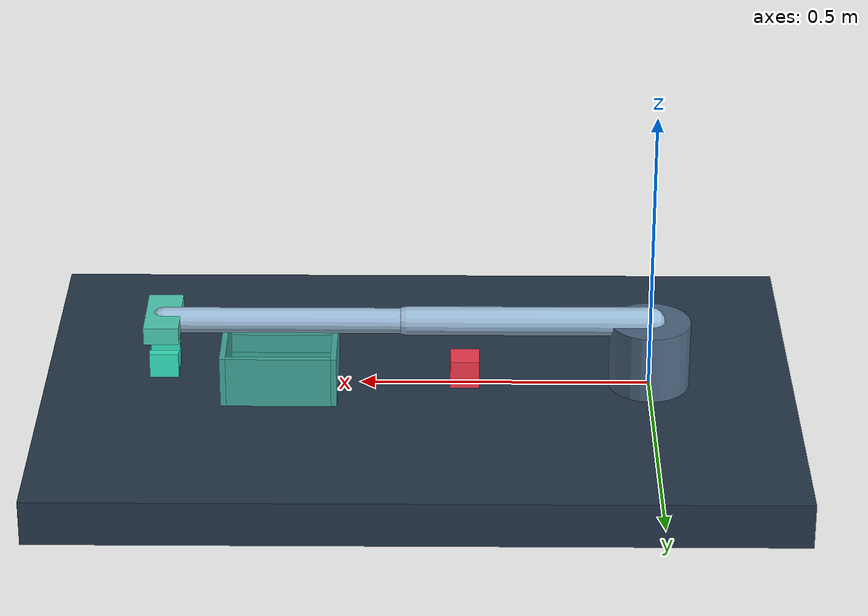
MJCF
<mujoco model="tabletop_contact_arm">
  <compiler angle="radian"/>
  <option timestep="0.002" gravity="0 0 -9.81" integrator="implicitfast" cone="elliptic" iterations="80"/>
  <visual><global offwidth="960" offheight="640"/><quality shadowsize="2048"/></visual>
  <default>
    <joint damping="3" armature="0.02"/>
    <geom friction="1.8 0.01 0.001" solref="0.006 1" solimp="0.95 0.99 0.001" condim="4"/>
    <position kp="2500" kv="100"/>
  </default>
  <asset>
    <texture name="grid" type="2d" builtin="checker" rgb1="0.12 0.18 0.25" rgb2="0.16 0.23 0.31" width="256" height="256"/>
    <material name="table" texture="grid" texrepeat="8 6" reflectance="0.12"/>
  </asset>
  <worldbody>
    <light pos="0.3 -1 2" dir="0 0 -1" diffuse="0.9 0.9 0.9"/>
    <light pos="0.5 1 1.5" dir="0 0 -1" diffuse="0.5 0.6 0.7"/>
    <camera name="overview" pos="1.30 -1.45 1.05" xyaxes="0.85 0.53 0 -0.24 0.39 0.89"/>
    <camera name="perception" pos="0.4 0 1.2" xyaxes="1 0 0 0 1 0" fovy="45"/>
    <geom name="table" type="box" pos="0.4 0 -0.04" size="0.65 0.42 0.04" material="table"/>
    <geom name="pedestal" type="cylinder" pos="0 0 0.06" size="0.07 0.06" rgba="0.3 0.4 0.5 1"/>
    <geom name="tray_floor" type="box" pos="0.64 0 0.0075" size="0.09 0.08 0.0075" rgba="0.2 0.6 0.55 1"/>
    <geom name="tray_left" type="box" pos="0.545 0 0.045" size="0.005 0.09 0.045" rgba="0.25 0.65 0.6 1"/>
    <geom name="tray_right" type="box" pos="0.735 0 0.045" size="0.005 0.09 0.045" rgba="0.25 0.65 0.6 1"/>
    <geom name="tray_back" type="box" pos="0.64 0.085 0.045" size="0.09 0.005 0.045" rgba="0.25 0.65 0.6 1"/>
    <geom name="tray_front" type="box" pos="0.64 -0.085 0.025" size="0.09 0.005 0.025" rgba="0.25 0.65 0.6 1"/>
    <body name="upper" pos="0 0 0.12" gravcomp="1">
      <joint name="shoulder" axis="0 1 0" range="-2.8 0.4"/>
      <geom type="capsule" fromto="0 0 0 0.42 0 0" size="0.025" mass="0.6" rgba="0.6 0.73 0.84 1"/>
      <body name="forearm" pos="0.42 0 0" gravcomp="1">
        <joint name="elbow" axis="0 1 0" range="0 2.9"/>
        <geom type="capsule" fromto="0 0 0 0.42 0 0" size="0.022" mass="0.4" rgba="0.6 0.73 0.84 1"/>
        <body name="wrist" pos="0.42 0 0" gravcomp="1">
          <joint name="wrist" axis="0 1 0" range="-2.9 2.9"/>
          <geom name="palm" type="box" size="0.03 0.065 0.015" mass="0.15" rgba="0.3 0.8 0.7 1"/>
          <site name="tip" pos="0 0 -0.075" size="0.004" rgba="0.3 1 0.7 0.2"/>
          <body name="finger_left" pos="0 0.02 -0.075">
            <joint name="finger_left" type="slide" axis="0 1 0" range="0 0.04" damping="1" armature="0.002"/>
            <geom name="finger_left" type="box" size="0.025 0.008 0.022" mass="0.05" rgba="0.2 0.9 0.75 1"/>
          </body>
          <body name="finger_right" pos="0 -0.02 -0.075">
            <joint name="finger_right" type="slide" axis="0 -1 0" range="0 0.04" damping="1" armature="0.002"/>
            <geom name="finger_right" type="box" size="0.025 0.008 0.022" mass="0.05" rgba="0.2 0.9 0.75 1"/>
          </body>
        </body>
      </body>
    </body>
    <body name="red_block" pos="0.32 0 0.027">
      <freejoint name="block_free"/>
      <geom name="red_block" type="box" size="0.025 0.025 0.025" mass="0.06" rgba="0.95 0.22 0.3 1"/>
    </body>
  </worldbody>
  <actuator>
    <position joint="shoulder" ctrlrange="-2.8 0.4" forcerange="-80 80"/>
    <position joint="elbow" ctrlrange="0 2.9" forcerange="-60 60"/>
    <position joint="wrist" ctrlrange="-2.9 2.9" forcerange="-30 30"/>
    <position joint="finger_left" kp="400" kv="10" ctrlrange="0 0.04" forcerange="-12 12"/>
    <position joint="finger_right" kp="400" kv="10" ctrlrange="0 0.04" forcerange="-12 12"/>
  </actuator>
</mujoco>
